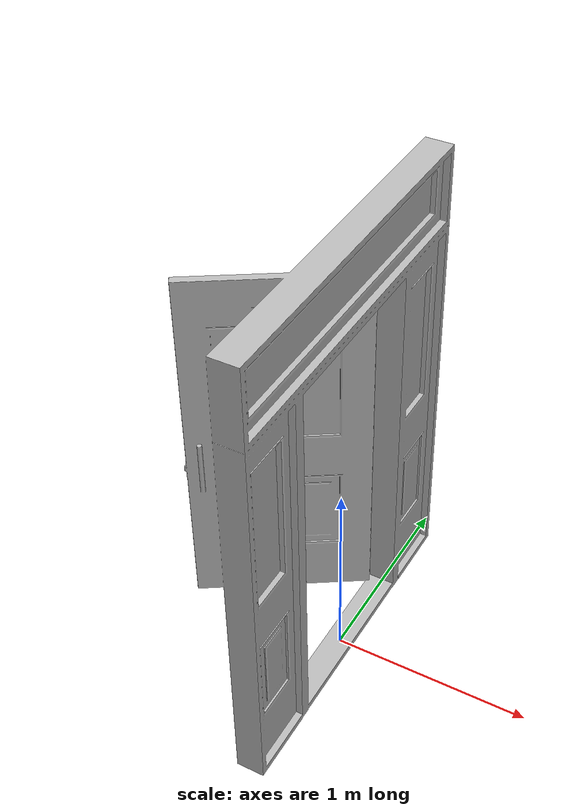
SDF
<?xml version='1.0'?>
<sdf version='1.4'>
  <model name='757'>
    <pose>0 0 0 0 0 0</pose>
    <static>true</static>
    <link name='link'>
      <collision name='collision'>
        <pose>0 0 0 0 0 0</pose>
        <geometry>
          <box>
            <size>0.900001 1.76 2</size>
          </box>
        </geometry>
      </collision>
      <visual name='visual'>
        <pose>0 0 0 0 0 0</pose>
        <geometry>
          <mesh><uri>model://757/757.dae</uri></mesh>
        </geometry>
      </visual>
    </link>
  </model>
</sdf>
